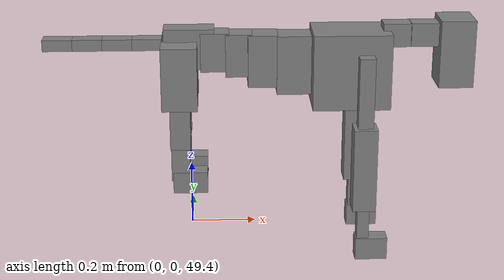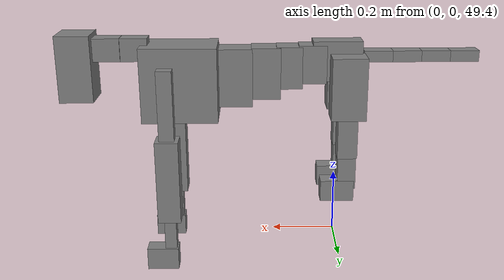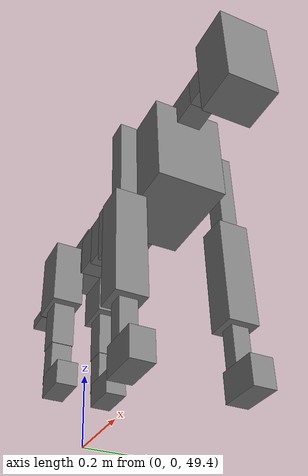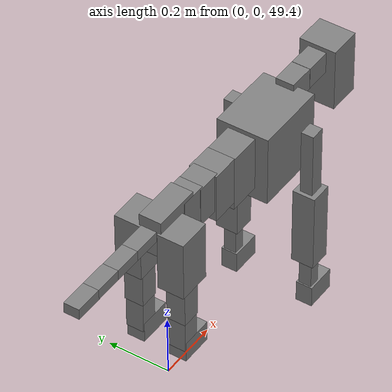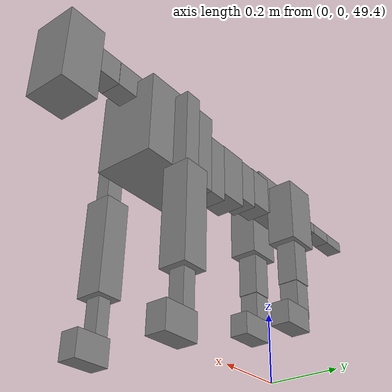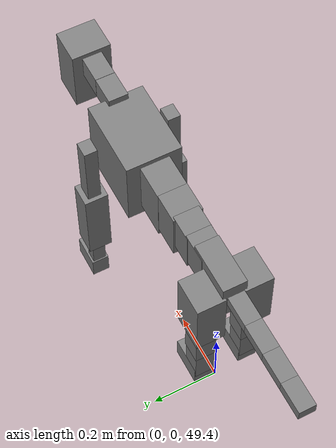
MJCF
<mujoco model="dog">

    <default>
        <joint armature="0.02" stiffness="1" damping="0.2" limited="true"/>
        <geom condim="3" friction="1 0.05 0.05" margin="0.01"/>
        <motor ctrllimited="true" ctrlrange="-1.0 1.0" forcelimited="true" gear="50"/>
    </default>

    <compiler inertiafromgeom="true" angle="radian"/>

    <option timestep="0.016" iterations="50" tolerance="1e-10" solver="Newton" jacobian="dense" cone="pyramidal"/>

    <size nconmax="20000" njmax="60000" nstack="5000000"/>
    <visual>
        <map force="0.1" zfar="30"/>
        <rgba haze="0.15 0.25 0.35 1"/>
        <quality shadowsize="2048"/>
        <global offwidth="800" offheight="800"/>
    </visual>

    <asset>
        <texture type="skybox" builtin="gradient" rgb1="0.3 0.5 0.7" rgb2="0 0 0" width="512" height="512"/>
        <texture name="texplane" type="2d" builtin="checker" rgb1=".2 .3 .4" rgb2=".1 0.15 0.2" width="512" height="512"
                 mark="cross" markrgb=".8 .8 .8"/>
        <texture name="texgeom" type="cube" builtin="flat" mark="cross" width="127" height="1278" rgb1="0.8 0.6 0.4"
                 rgb2="0.8 0.6 0.4" markrgb="1 1 1" random="0.01"/>

        <material name="matplane" reflectance="0.3" texture="texplane" texrepeat="1 1" texuniform="true"/>
        <material name="matgeom" texture="texgeom" texuniform="true" rgba="0.8 0.6 .4 1"/>
    </asset>

    <worldbody>
        <geom name="floor" pos="0 0 0" size="0 0 .25" type="plane" material="matplane" condim="3"/>

        <light directional="false" diffuse=".2 .2 .2" specular="0 0 0" pos="0 0 5" dir="0 0 -1" castshadow="false"/>
        <light mode="targetbodycom" target="torso" directional="false" diffuse=".8 .8 .8" specular="0.3 0.3 0.3"
               pos="0 0 4.0" dir="0 0 -1"/>

        <body name="root" pos="0 0 50">
            <freejoint name="root_1"/>
            <geom type="box" pos="0 0 -0.02" size="0.0774  0.0358  0.063" density="2030"/>

            <body name="spine1" pos="0.054 0 0">
                <joint name="spine1_y" axis="0 1 0" range="0 0.7" limited="true"/>
                <geom type="box" pos="0.02375 0 -0.03" size="0.04375  0.0375  0.05985" density="2030"/>

                <body name="spine2" pos="0.0612 0 0">
                    <joint name="spine2_y" axis="0 1 0" range="-0.15 0.15" limited="true"/>
                    <geom type="box" pos="0.03555  0  -0.04" size="0.04055  0.039  0.06615" density="2030"/>

                    <body name="spine3" pos="0.0730 0 0">
                        <joint name="spine3_y" axis="0 1 0" range="-0.15 0.15" limited="true"/>
                        <geom type="box" pos="0.03555  0  -0.057" size="0.04555  0.0445  0.081" density="2030"/>

                        <body name="spine4" pos="0.0780 0 0">
                            <joint name="spine4_y" axis="0 1 0" range="-0.15 0.15" limited="true"/>
                            <geom type="box" pos="0.05265  0  -0.07" size="0.05265  0.045  0.09135" density="2030"/>

                            <body name="torso" pos="0.1082 0 0">
                                <joint name="torso_y" axis="0 1 0" range="-0.15 0.15" limited="true"/>
                                <geom type="box" pos="0.11925  0  -0.085" size="0.11925  0.085  0.11745"
                                      density="2030"/>

                                <body name="neck1" pos="0.2160  0   0.0180">
                                    <joint name="neck1_y" axis="0 1 0" range="-1.2  -1" limited="true"/>
                                    <geom type="box" pos="0.0423  0  0" size="0.0423  0.03  0.036" density="2325"/>

                                    <body name="neck2" pos="0.0853  0  0">
                                        <joint name="neck2_y" axis="0 1 0" range="0.1  0" limited="true"/>
                                        <geom type="box" pos="0.0423  0  0" size="0.0423  0.03  0.036" density="2325"/>

                                        <body name="head" pos="0.0853  0  0">
                                            <joint name="head_y" axis="0 1 0" range="-0.3  -0.2" limited="true"/>
                                            <geom type="box" pos="0.0531  0  -0.055" size="0.0531  0.06  0.1044"
                                                  density="4030"/>

                                        </body>
                                    </body>
                                </body>

                                <body name="front_shoulder" pos="0.156  0   -0.0480">
                                    <joint name="front_shoulder_y" axis="0 1 0" range="-1 1.5" limited="true"/>
                                    <geom type="box" pos="0 0.13 -0.0959" size="0.0237  0.0202  0.1225" density="1158"/>
                                    <geom type="box" pos="0 -0.13 -0.0959" size="0.0237  0.0202  0.1225"
                                          density="1158"/>

                                    <body name="front_elbow" pos="0  0  -0.1918">
                                        <joint name="front_elbow_y" axis="0 1 0" range="-2 0" limited="true"/>
                                        <geom type="box" pos="0 0.13 -0.1318" size="0.0359  0.0367  0.1318"
                                              density="1081"/>
                                        <geom type="box" pos="0 -0.13 -0.1318" size="0.0359  0.0367  0.1318"
                                              density="1081"/>

                                        <body name="front_wrist" pos="0  0  -0.2635">
                                            <joint name="front_wrist_y" axis="0 1 0" range="-0.2 0" limited="true"/>
                                            <geom type="box" pos="0 0.13 -0.0556" size="0.0185  0.0206  0.0688"
                                                  density="1664"/>
                                            <geom type="box" pos="0 -0.13 -0.0556" size="0.0185  0.0206  0.0688"
                                                  density="1664"/>

                                            <body name="front_finger_end" pos="0  0  -0.1113">
                                                <joint name="front_finger_y" axis="0 1 0" range="-0.4 1"
                                                       limited="true"/>
                                                <geom type="box" pos="0.0269  0.13  -0.0201"
                                                      size="0.0494  0.0269  0.0351" density="1515"/>
                                                <geom type="box" pos="0.0269  -0.13  -0.0201"
                                                      size="0.0494  0.0269  0.0351" density="1515"/>

                                            </body>

                                        </body>
                                    </body>
                                </body>

                            </body>
                        </body>
                    </body>
                </body>
            </body>

            <body name="back_hip" pos="-0.03 0 -0.018">
                <joint name="back_hip_y" axis="0 1 0" range="-1.5 0.3" limited="true"/>
                <geom type="box" pos="0 0.07 -0.0750" size="0.0544  0.0427  0.0978" density="1154"/>
                <geom type="box" pos="0 -0.07 -0.0750" size="0.0544  0.0427  0.0978" density="1154"/>

                <body name="back_knee" pos="0  0  -0.1501">
                    <joint name="back_knee_y" axis="0 1 0" range="0 2.8" limited="true"/>
                    <geom type="box" pos="0 0.07 -0.0669" size="0.0311  0.0306  0.0825" density="1227"/>
                    <geom type="box" pos="0 -0.07 -0.0669" size="0.0311  0.0306  0.0825" density="1227"/>

                    <body name="back_ankle" pos="0  0  -0.1338">
                        <joint name="back_ankle_y" axis="0 1 0" range="-2.2 0" limited="true"/>
                        <geom type="box" pos="0 0.07 -0.0535" size="0.0286  0.0286  0.0648" density="1284"/>
                        <geom type="box" pos="0 -0.07 -0.0535" size="0.0286  0.0286  0.0648" density="1284"/>

                        <body name="back_toe_end" pos="0  0  -0.1071">
                            <joint name="back_toe_y" axis="0 1 0" range="-0.4 1" limited="true"/>
                            <geom type="box" pos="0.0288  0.07  -0.0186" size="0.0529  0.0288  0.0336" density="1515"/>
                            <geom type="box" pos="0.0288  -0.07  -0.0186" size="0.0529  0.0288  0.0336" density="1515"/>

                        </body>
                    </body>
                </body>
            </body>

            <body name="tail1" pos="-0.074 0 -0.006">
                <joint name="tail1_y" axis="0 1 0" range="-0.2 0.2" limited="true"/>
                <geom type="box" pos="-0.0536  0  0" size="0.045  0.025  0.0175" density="1587"/>

                <body name="tail2" pos="-0.09 0 0">
                    <joint name="tail2_y" axis="0 1 0" range="-0.2 0.2" limited="true"/>
                    <geom type="box" pos="-0.0536  0  0" size="0.045  0.025  0.0175" density="1587"/>

                    <body name="tail3" pos="-0.09 0 0">
                        <joint name="tail3_y" axis="0 1 0" range="-0.2 0.2" limited="true"/>
                        <geom type="box" pos="-0.0536  0  0" size="0.045  0.025  0.0175" density="1587"/>

                        <body name="tail4" pos="-0.09 0 0">
                            <joint name="tail4_y" axis="0 1 0" range="-0.2 0.2" limited="true"/>
                            <geom type="box" pos="-0.0536  0  0" size="0.045  0.025  0.0175" density="1587"/>

                        </body>
                    </body>
                </body>
            </body>
        </body>
    </worldbody>

    <actuator>
        <motor joint="spine1_y" forcerange="-150 150     "/>
        <motor joint="spine2_y" forcerange="-150 150     "/>
        <motor joint="spine3_y" forcerange="-150 150     "/>
        <motor joint="spine4_y" forcerange="-150 150     "/>
        <motor joint="torso_y" forcerange="-150 150     "/>
        <motor joint="neck1_y" forcerange="-100 100       "/>
        <motor joint="neck2_y" forcerange="-100 100       "/>
        <motor joint="head_y" forcerange="-150 150       "/>
        <motor joint="front_shoulder_y" forcerange="-114.34 120.53"/>
        <motor joint="front_elbow_y" forcerange="-197.03 169.91"/>
        <motor joint="front_wrist_y" forcerange="-112.59 52.02"/>
        <motor joint="front_finger_y" forcerange="-38.95 64.63"/>
        <motor joint="back_hip_y" forcerange="-370.16 399.25"/>
        <motor joint="back_knee_y" forcerange="-264.39 381.12"/>
        <motor joint="back_angle_y" forcerange="-203.13 154.28"/>
        <motor joint="back_toe_y" forcerange="-78.27 72.42"/>
        <motor joint="tail1_y" forcerange="-50 50     "/>
        <motor joint="tail2_y" forcerange="-50 50     "/>
        <motor joint="tail3_y" forcerange="-50 50     "/>
        <motor joint="tail4_y" forcerange="-50 50     "/>
    </actuator>
</mujoco>
